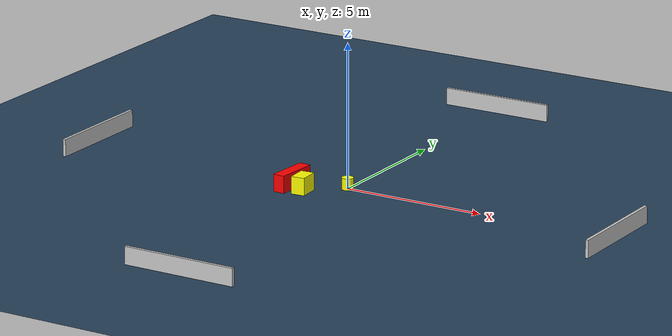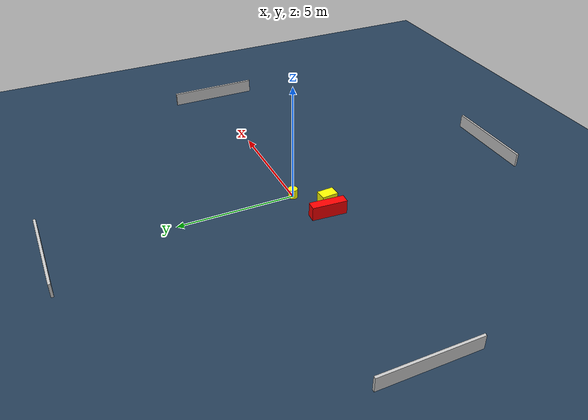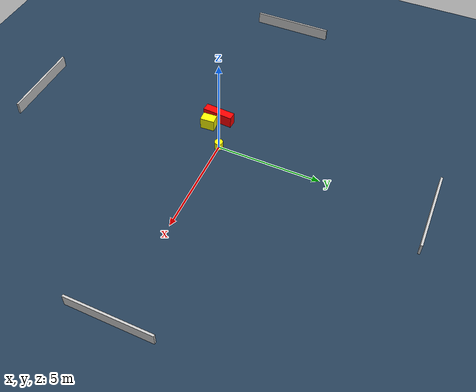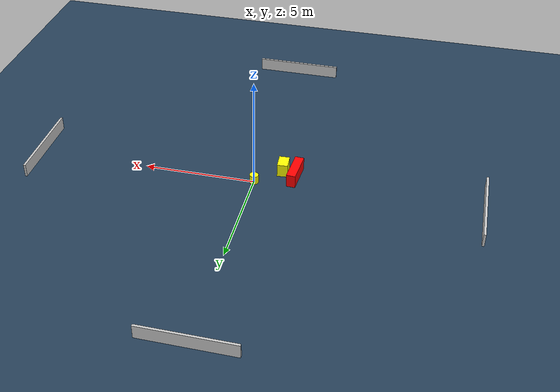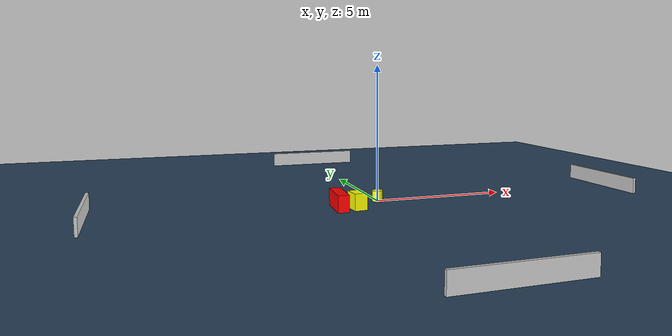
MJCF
<?xml version="1.0" ?>
<mujoco model="generated_environment">
  <option timestep="0.01" integrator="RK4" cone="elliptic"/>
  <default>
    <geom density="1"/>
  </default>
  <asset>
    <texture builtin="gradient" height="3072" name="skybox" rgb1="0.3 0.5 0.7" rgb2="0 0 0" type="skybox" width="512"/>
    <texture builtin="checker" height="300" name="groundplane" rgb1="0.2 0.3 0.4" rgb2="0.1 0.2 0.3" type="2d" width="300"/>
    <material name="groundplane" reflectance="0.2" texrepeat="5 5" texture="groundplane"/>
  </asset>
  <worldbody>
    <light dir="0 0 -1" directional="true" pos="0 0 1.5"/>
    <geom condim="3" friction="0.5 0.005 0.001" material="groundplane" name="floor" pos="0 0 0" size="0 0 0.05" type="plane"/>
    <body name="walls">
      <geom name="wall_1" condim="4" pos="-10.0 0.0 0.3" rgba="0.800000011920929 0.800000011920929 0.800000011920929 1.0" size="0.05 2.0 0.3" type="box"/>
      <geom name="wall_2" condim="4" pos="10.0 0.0 0.3" rgba="0.800000011920929 0.800000011920929 0.800000011920929 1.0" size="0.05 2.0 0.3" type="box"/>
      <geom name="wall_3" condim="4" pos="0.0 -10.0 0.3" rgba="0.800000011920929 0.800000011920929 0.800000011920929 1.0" size="2.0 0.05 0.3" type="box"/>
      <geom name="wall_4" condim="4" pos="0.0 10.0 0.3" rgba="0.800000011920929 0.800000011920929 0.800000011920929 1.0" size="2.0 0.05 0.3" type="box"/>
    </body>
    <body name="robot">
      <joint name="joint_x" type="slide" pos="0 0 0" axis="1 0 0"/>
      <joint name="joint_y" type="slide" pos="0 0 0" axis="0 1 0"/>
      <geom name="robot" type="cylinder" pos="0.0 0.0 0.2" size="0.2 0.2 0.0" mass="5.0" friction="1.0 0.005 0.0001" condim="4" rgba="1.0 1.0 0.0 1.0"/>
    </body>
    <body name="obstacle_1_movable">
      <geom name="obstacle_1_movable" condim="4" pos="-1.1005504048500556 -1.0360714827549713 0.3" euler="0 0 183.6728012823464" friction="0.0 0.005 0.001" rgba="1.0 1.0 0.0 1.0" size="0.2350896865352713 0.34874282566088366 0.3" type="box" mass="0.1"/>
      <joint type="free"/>
    </body>
    <body name="obstacle_2_static">
      <geom name="obstacle_2_static" condim="4" pos="-1.6921846966981628 -0.7652050376415249 0.3" euler="0 0 266.1442821171875" friction="0.0 0.005 0.001" rgba="1.0 0.0 0.0 1.0" size="0.7421695379957749 0.20314071388711036 0.3" type="box"/>
    </body>
  </worldbody>
  <actuator>
    <motor name="actuator_x" joint="joint_x" gear="1" ctrlrange="-1 1"/>
    <motor name="actuator_y" joint="joint_y" gear="1" ctrlrange="-1 1"/>
  </actuator>
</mujoco>
